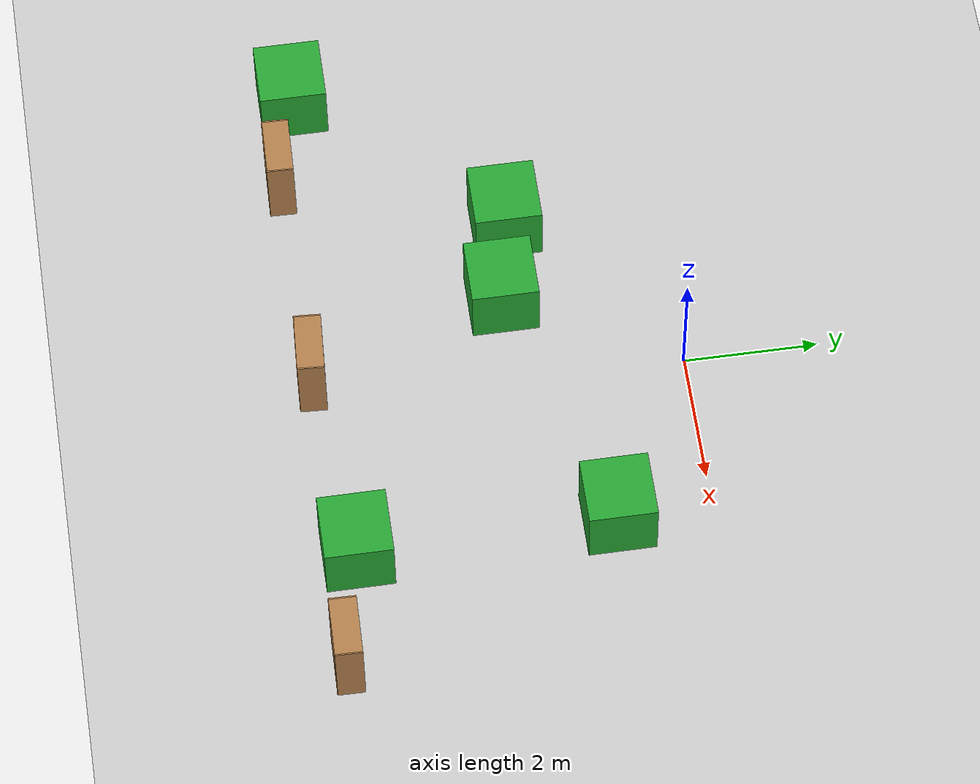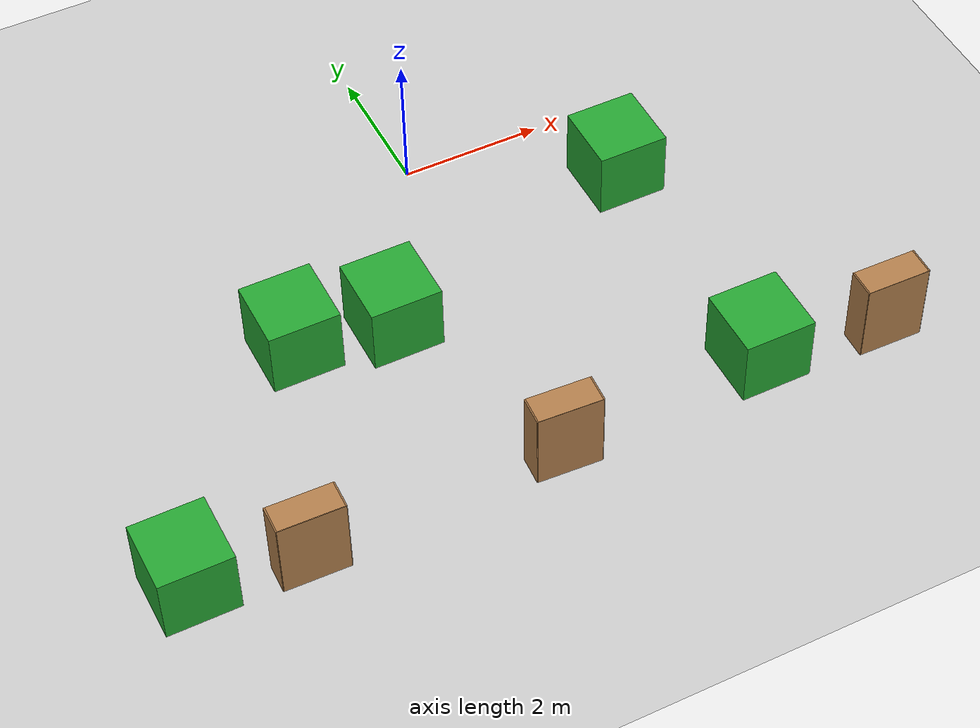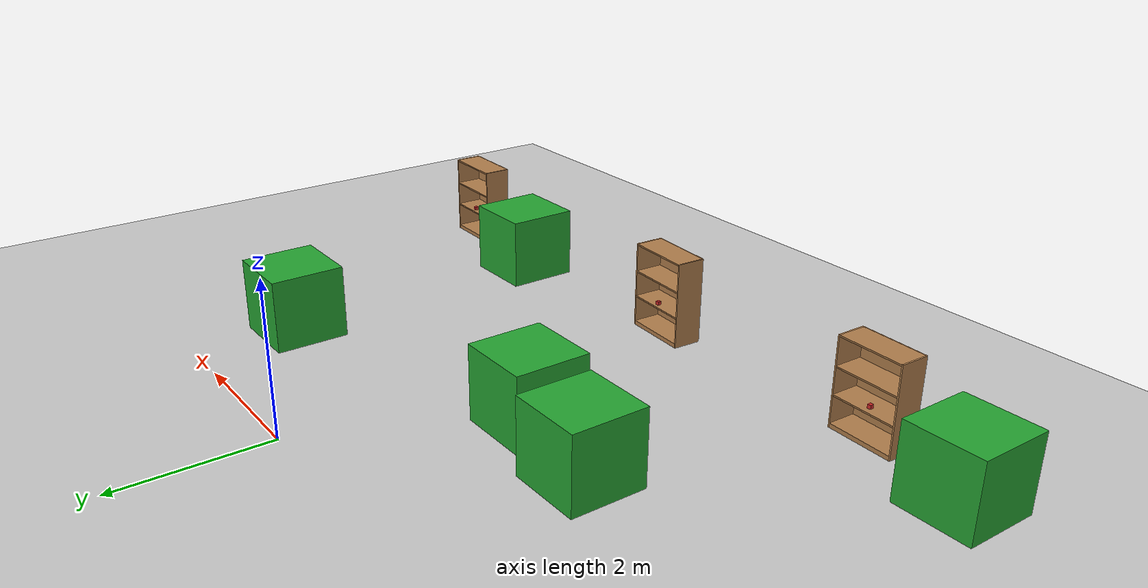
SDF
<sdf version="1.6">
 <world name="default">
  <model name="ground_plane">
   <static>1</static>
   <link name="link">
    <collision name="collision">
     <geometry><plane><normal>0 0 1</normal><size>100 100</size></plane></geometry>
     <surface><friction><ode><mu>100</mu><mu2>50</mu2></ode></friction></surface>
    </collision>
    <visual name="visual">
     <cast_shadows>0</cast_shadows>
     <geometry><plane><normal>0 0 1</normal><size>100 100</size></plane></geometry>
     <material>
      <script><uri>file://media/materials/scripts/gazebo.material</uri><name>Gazebo/Grey</name></script>
     </material>
    </visual>
   </link>
  </model>
  <model name="bookshelf_10">
   <static>1</static>
   <link name="link">
    <inertial><mass>1</mass></inertial>
    <collision name="back">
     <pose>0 0.005 0.6 0 -0 0</pose>
     <geometry><box><size>0.9 0.01 1.2</size></box></geometry>
    </collision>
    <visual name="visual1">
     <pose>0 0.005 0.6 0 -0 0</pose>
     <geometry><box><size>0.9 0.01 1.2</size></box></geometry>
     <material>
      <script><uri>file://media/materials/scripts/gazebo.material</uri><name>Gazebo/Wood</name></script>
     </material>
    </visual>
    <collision name="left_side">
     <pose>0.45 -0.195 0.6 0 -0 0</pose>
     <geometry><box><size>0.02 0.4 1.2</size></box></geometry>
    </collision>
    <visual name="visual2">
     <pose>0.45 -0.195 0.6 0 -0 0</pose>
     <geometry><box><size>0.02 0.4 1.2</size></box></geometry>
     <material>
      <script><uri>file://media/materials/scripts/gazebo.material</uri><name>Gazebo/Wood</name></script>
     </material>
    </visual>
    <collision name="right_side">
     <pose>-0.45 -0.195 0.6 0 -0 0</pose>
     <geometry><box><size>0.02 0.4 1.2</size></box></geometry>
    </collision>
    <visual name="visual3">
     <pose>-0.45 -0.195 0.6 0 -0 0</pose>
     <geometry><box><size>0.02 0.4 1.2</size></box></geometry>
     <material>
      <script><uri>file://media/materials/scripts/gazebo.material</uri><name>Gazebo/Wood</name></script>
     </material>
    </visual>
    <collision name="bottom">
     <pose>0 -0.195 0.03 0 -0 0</pose>
     <geometry><box><size>0.88 0.4 0.06</size></box></geometry>
    </collision>
    <visual name="visual4">
     <pose>0 -0.195 0.03 0 -0 0</pose>
     <geometry><box><size>0.88 0.4 0.06</size></box></geometry>
     <material>
      <script><uri>file://media/materials/scripts/gazebo.material</uri><name>Gazebo/Wood</name></script>
     </material>
    </visual>
    <collision name="top">
     <pose>0 -0.195 1.19 0 -0 0</pose>
     <geometry><box><size>0.88 0.4 0.02</size></box></geometry>
    </collision>
    <visual name="visual5">
     <pose>0 -0.195 1.19 0 -0 0</pose>
     <geometry><box><size>0.88 0.4 0.02</size></box></geometry>
     <material>
      <script><uri>file://media/materials/scripts/gazebo.material</uri><name>Gazebo/Wood</name></script>
     </material>
    </visual>
    <collision name="low_shelf">
     <pose>0 -0.195 0.43 0 -0 0</pose>
     <geometry><box><size>0.88 0.4 0.02</size></box></geometry>
    </collision>
    <visual name="visual6">
     <pose>0 -0.195 0.43 0 -0 0</pose>
     <geometry><box><size>0.88 0.4 0.02</size></box></geometry>
     <material>
      <script><uri>file://media/materials/scripts/gazebo.material</uri><name>Gazebo/Wood</name></script>
     </material>
    </visual>
    <collision name="high_shelf">
     <pose>0 -0.195 0.8 0 -0 0</pose>
     <geometry><box><size>0.88 0.4 0.02</size></box></geometry>
    </collision>
    <visual name="visual7">
     <pose>0 -0.195 0.8 0 -0 0</pose>
     <geometry><box><size>0.88 0.4 0.02</size></box></geometry>
     <material>
      <script><uri>file://media/materials/scripts/gazebo.material</uri><name>Gazebo/Wood</name></script>
     </material>
    </visual>
   </link>
   <pose>-3.90846 -5.76412 0 0 -0 3.11651</pose>
  </model>
  <model name="bookshelf_11">
   <static>1</static>
   <link name="link">
    <inertial><mass>1</mass></inertial>
    <collision name="back">
     <pose>0 0.005 0.6 0 -0 0</pose>
     <geometry><box><size>0.9 0.01 1.2</size></box></geometry>
    </collision>
    <visual name="visual1">
     <pose>0 0.005 0.6 0 -0 0</pose>
     <geometry><box><size>0.9 0.01 1.2</size></box></geometry>
     <material>
      <script><uri>file://media/materials/scripts/gazebo.material</uri><name>Gazebo/Wood</name></script>
     </material>
    </visual>
    <collision name="left_side">
     <pose>0.45 -0.195 0.6 0 -0 0</pose>
     <geometry><box><size>0.02 0.4 1.2</size></box></geometry>
    </collision>
    <visual name="visual2">
     <pose>0.45 -0.195 0.6 0 -0 0</pose>
     <geometry><box><size>0.02 0.4 1.2</size></box></geometry>
     <material>
      <script><uri>file://media/materials/scripts/gazebo.material</uri><name>Gazebo/Wood</name></script>
     </material>
    </visual>
    <collision name="right_side">
     <pose>-0.45 -0.195 0.6 0 -0 0</pose>
     <geometry><box><size>0.02 0.4 1.2</size></box></geometry>
    </collision>
    <visual name="visual3">
     <pose>-0.45 -0.195 0.6 0 -0 0</pose>
     <geometry><box><size>0.02 0.4 1.2</size></box></geometry>
     <material>
      <script><uri>file://media/materials/scripts/gazebo.material</uri><name>Gazebo/Wood</name></script>
     </material>
    </visual>
    <collision name="bottom">
     <pose>0 -0.195 0.03 0 -0 0</pose>
     <geometry><box><size>0.88 0.4 0.06</size></box></geometry>
    </collision>
    <visual name="visual4">
     <pose>0 -0.195 0.03 0 -0 0</pose>
     <geometry><box><size>0.88 0.4 0.06</size></box></geometry>
     <material>
      <script><uri>file://media/materials/scripts/gazebo.material</uri><name>Gazebo/Wood</name></script>
     </material>
    </visual>
    <collision name="top">
     <pose>0 -0.195 1.19 0 -0 0</pose>
     <geometry><box><size>0.88 0.4 0.02</size></box></geometry>
    </collision>
    <visual name="visual5">
     <pose>0 -0.195 1.19 0 -0 0</pose>
     <geometry><box><size>0.88 0.4 0.02</size></box></geometry>
     <material>
      <script><uri>file://media/materials/scripts/gazebo.material</uri><name>Gazebo/Wood</name></script>
     </material>
    </visual>
    <collision name="low_shelf">
     <pose>0 -0.195 0.43 0 -0 0</pose>
     <geometry><box><size>0.88 0.4 0.02</size></box></geometry>
    </collision>
    <visual name="visual6">
     <pose>0 -0.195 0.43 0 -0 0</pose>
     <geometry><box><size>0.88 0.4 0.02</size></box></geometry>
     <material>
      <script><uri>file://media/materials/scripts/gazebo.material</uri><name>Gazebo/Wood</name></script>
     </material>
    </visual>
    <collision name="high_shelf">
     <pose>0 -0.195 0.8 0 -0 0</pose>
     <geometry><box><size>0.88 0.4 0.02</size></box></geometry>
    </collision>
    <visual name="visual7">
     <pose>0 -0.195 0.8 0 -0 0</pose>
     <geometry><box><size>0.88 0.4 0.02</size></box></geometry>
     <material>
      <script><uri>file://media/materials/scripts/gazebo.material</uri><name>Gazebo/Wood</name></script>
     </material>
    </visual>
   </link>
   <pose>-0.409248 -5.70579 0 0 -0 3.08573</pose>
  </model>
  <model name="bookshelf_12">
   <static>1</static>
   <link name="link">
    <inertial><mass>1</mass></inertial>
    <collision name="back">
     <pose>0 0.005 0.6 0 -0 0</pose>
     <geometry><box><size>0.9 0.01 1.2</size></box></geometry>
    </collision>
    <visual name="visual1">
     <pose>0 0.005 0.6 0 -0 0</pose>
     <geometry><box><size>0.9 0.01 1.2</size></box></geometry>
     <material>
      <script><uri>file://media/materials/scripts/gazebo.material</uri><name>Gazebo/Wood</name></script>
     </material>
    </visual>
    <collision name="left_side">
     <pose>0.45 -0.195 0.6 0 -0 0</pose>
     <geometry><box><size>0.02 0.4 1.2</size></box></geometry>
    </collision>
    <visual name="visual2">
     <pose>0.45 -0.195 0.6 0 -0 0</pose>
     <geometry><box><size>0.02 0.4 1.2</size></box></geometry>
     <material>
      <script><uri>file://media/materials/scripts/gazebo.material</uri><name>Gazebo/Wood</name></script>
     </material>
    </visual>
    <collision name="right_side">
     <pose>-0.45 -0.195 0.6 0 -0 0</pose>
     <geometry><box><size>0.02 0.4 1.2</size></box></geometry>
    </collision>
    <visual name="visual3">
     <pose>-0.45 -0.195 0.6 0 -0 0</pose>
     <geometry><box><size>0.02 0.4 1.2</size></box></geometry>
     <material>
      <script><uri>file://media/materials/scripts/gazebo.material</uri><name>Gazebo/Wood</name></script>
     </material>
    </visual>
    <collision name="bottom">
     <pose>0 -0.195 0.03 0 -0 0</pose>
     <geometry><box><size>0.88 0.4 0.06</size></box></geometry>
    </collision>
    <visual name="visual4">
     <pose>0 -0.195 0.03 0 -0 0</pose>
     <geometry><box><size>0.88 0.4 0.06</size></box></geometry>
     <material>
      <script><uri>file://media/materials/scripts/gazebo.material</uri><name>Gazebo/Wood</name></script>
     </material>
    </visual>
    <collision name="top">
     <pose>0 -0.195 1.19 0 -0 0</pose>
     <geometry><box><size>0.88 0.4 0.02</size></box></geometry>
    </collision>
    <visual name="visual5">
     <pose>0 -0.195 1.19 0 -0 0</pose>
     <geometry><box><size>0.88 0.4 0.02</size></box></geometry>
     <material>
      <script><uri>file://media/materials/scripts/gazebo.material</uri><name>Gazebo/Wood</name></script>
     </material>
    </visual>
    <collision name="low_shelf">
     <pose>0 -0.195 0.43 0 -0 0</pose>
     <geometry><box><size>0.88 0.4 0.02</size></box></geometry>
    </collision>
    <visual name="visual6">
     <pose>0 -0.195 0.43 0 -0 0</pose>
     <geometry><box><size>0.88 0.4 0.02</size></box></geometry>
     <material>
      <script><uri>file://media/materials/scripts/gazebo.material</uri><name>Gazebo/Wood</name></script>
     </material>
    </visual>
    <collision name="high_shelf">
     <pose>0 -0.195 0.8 0 -0 0</pose>
     <geometry><box><size>0.88 0.4 0.02</size></box></geometry>
    </collision>
    <visual name="visual7">
     <pose>0 -0.195 0.8 0 -0 0</pose>
     <geometry><box><size>0.88 0.4 0.02</size></box></geometry>
     <material>
      <script><uri>file://media/materials/scripts/gazebo.material</uri><name>Gazebo/Wood</name></script>
     </material>
    </visual>
   </link>
   <pose>4.32997 -5.74972 0 0 -0 3.12234</pose>
  </model>
  <model name="Box_0">
   <link name="link_0">
    <pose>-2e-06 3e-06 0 0 -0 0</pose>
    <inertial>
     <mass>1</mass>
     <inertia>
      <ixx>0.166667</ixx>
      <ixy>0</ixy>
      <ixz>0</ixz>
      <iyy>0.166667</iyy>
      <iyz>0</iyz>
      <izz>0.166667</izz>
     </inertia>
    </inertial>
    <visual name="visual">
     <geometry><box><size>1 1 1</size></box></geometry>
     <material>
      <lighting>1</lighting>
      <script><uri>file://media/materials/scripts/gazebo.material</uri><name>Gazebo/Green</name></script>
      <ambient>0 1 0 1</ambient>
      <diffuse>0 1 0 1</diffuse>
      <specular>0.01 0.01 0.01 1</specular>
      <emissive>0 0 0 1</emissive>
      <shader type="vertex"><normal_map>__default__</normal_map></shader>
     </material>
    </visual>
    <collision name="collision">
     <geometry><box><size>1 1 1</size></box></geometry>
     <surface>
      <friction>
       <ode><mu>1</mu><mu2>1</mu2><fdir1>0 0 0</fdir1><slip1>0</slip1><slip2>0</slip2></ode>
       <torsional>
        <coefficient>1</coefficient>
        <patch_radius>0</patch_radius>
        <surface_radius>0</surface_radius>
        <use_patch_radius>1</use_patch_radius>
        <ode><slip>0</slip></ode>
       </torsional>
      </friction>
      <bounce><restitution_coefficient>0</restitution_coefficient><threshold>1e+06</threshold></bounce>
      <contact>
       <collide_without_contact>0</collide_without_contact>
       <collide_without_contact_bitmask>1</collide_without_contact_bitmask>
       <collide_bitmask>1</collide_bitmask>
       <ode>
        <soft_cfm>0</soft_cfm>
        <soft_erp>0.2</soft_erp>
        <kp>1e+13</kp>
        <kd>1</kd>
        <max_vel>0.01</max_vel>
        <min_depth>0</min_depth>
       </ode>
       <bullet>
        <split_impulse>1</split_impulse>
        <split_impulse_penetration_threshold>-0.01</split_impulse_penetration_threshold>
        <soft_cfm>0</soft_cfm>
        <soft_erp>0.2</soft_erp>
        <kp>1e+13</kp>
        <kd>1</kd>
       </bullet>
      </contact>
     </surface>
    </collision>
   </link>
   <static>1</static>
   <allow_auto_disable>0</allow_auto_disable>
   <pose>2.61281 -5.21469 0.502592 0 -0 0</pose>
  </model>
  <model name="Box_0_clone">
   <link name="link_0">
    <pose>-2e-06 3e-06 0 0 -0 0</pose>
    <inertial>
     <mass>1</mass>
     <inertia>
      <ixx>0.166667</ixx>
      <ixy>0</ixy>
      <ixz>0</ixz>
      <iyy>0.166667</iyy>
      <iyz>0</iyz>
      <izz>0.166667</izz>
     </inertia>
    </inertial>
    <visual name="visual">
     <geometry><box><size>1 1 1</size></box></geometry>
     <material>
      <lighting>1</lighting>
      <script><uri>file://media/materials/scripts/gazebo.material</uri><name>Gazebo/Green</name></script>
      <ambient>0 1 0 1</ambient>
      <diffuse>0 1 0 1</diffuse>
      <specular>0.01 0.01 0.01 1</specular>
      <emissive>0 0 0 1</emissive>
      <shader type="vertex"><normal_map>__default__</normal_map></shader>
     </material>
    </visual>
    <collision name="collision">
     <geometry><box><size>1 1 1</size></box></geometry>
     <surface>
      <friction>
       <ode><mu>1</mu><mu2>1</mu2><fdir1>0 0 0</fdir1><slip1>0</slip1><slip2>0</slip2></ode>
       <torsional>
        <coefficient>1</coefficient>
        <patch_radius>0</patch_radius>
        <surface_radius>0</surface_radius>
        <use_patch_radius>1</use_patch_radius>
        <ode><slip>0</slip></ode>
       </torsional>
      </friction>
      <bounce><restitution_coefficient>0</restitution_coefficient><threshold>1e+06</threshold></bounce>
      <contact>
       <collide_without_contact>0</collide_without_contact>
       <collide_without_contact_bitmask>1</collide_without_contact_bitmask>
       <collide_bitmask>1</collide_bitmask>
       <ode>
        <soft_cfm>0</soft_cfm>
        <soft_erp>0.2</soft_erp>
        <kp>1e+13</kp>
        <kd>1</kd>
        <max_vel>0.01</max_vel>
        <min_depth>0</min_depth>
       </ode>
       <bullet>
        <split_impulse>1</split_impulse>
        <split_impulse_penetration_threshold>-0.01</split_impulse_penetration_threshold>
        <soft_cfm>0</soft_cfm>
        <soft_erp>0.2</soft_erp>
        <kp>1e+13</kp>
        <kd>1</kd>
       </bullet>
      </contact>
     </surface>
    </collision>
   </link>
   <static>1</static>
   <allow_auto_disable>0</allow_auto_disable>
   <pose>2.56057 -1.39682 0.502592 0 -0 0</pose>
  </model>
  <model name="Box_0_clone_2">
   <link name="link_0">
    <pose>-2e-06 3e-06 0 0 -0 0</pose>
    <inertial>
     <mass>1</mass>
     <inertia>
      <ixx>0.166667</ixx>
      <ixy>0</ixy>
      <ixz>0</ixz>
      <iyy>0.166667</iyy>
      <iyz>0</iyz>
      <izz>0.166667</izz>
     </inertia>
    </inertial>
    <visual name="visual">
     <geometry><box><size>1 1 1</size></box></geometry>
     <material>
      <lighting>1</lighting>
      <script><uri>file://media/materials/scripts/gazebo.material</uri><name>Gazebo/Green</name></script>
      <ambient>0 1 0 1</ambient>
      <diffuse>0 1 0 1</diffuse>
      <specular>0.01 0.01 0.01 1</specular>
      <emissive>0 0 0 1</emissive>
      <shader type="vertex"><normal_map>__default__</normal_map></shader>
     </material>
    </visual>
    <collision name="collision">
     <geometry><box><size>1 1 1</size></box></geometry>
     <surface>
      <friction>
       <ode><mu>1</mu><mu2>1</mu2><fdir1>0 0 0</fdir1><slip1>0</slip1><slip2>0</slip2></ode>
       <torsional>
        <coefficient>1</coefficient>
        <patch_radius>0</patch_radius>
        <surface_radius>0</surface_radius>
        <use_patch_radius>1</use_patch_radius>
        <ode><slip>0</slip></ode>
       </torsional>
      </friction>
      <bounce><restitution_coefficient>0</restitution_coefficient><threshold>1e+06</threshold></bounce>
      <contact>
       <collide_without_contact>0</collide_without_contact>
       <collide_without_contact_bitmask>1</collide_without_contact_bitmask>
       <collide_bitmask>1</collide_bitmask>
       <ode>
        <soft_cfm>0</soft_cfm>
        <soft_erp>0.2</soft_erp>
        <kp>1e+13</kp>
        <kd>1</kd>
        <max_vel>0.01</max_vel>
        <min_depth>0</min_depth>
       </ode>
       <bullet>
        <split_impulse>1</split_impulse>
        <split_impulse_penetration_threshold>-0.01</split_impulse_penetration_threshold>
        <soft_cfm>0</soft_cfm>
        <soft_erp>0.2</soft_erp>
        <kp>1e+13</kp>
        <kd>1</kd>
       </bullet>
      </contact>
     </surface>
    </collision>
   </link>
   <static>1</static>
   <allow_auto_disable>0</allow_auto_disable>
   <pose>-1.38959 -2.54199 0.502592 0 -0 0</pose>
  </model>
  <model name="Box_0_clone_4">
   <link name="link_0">
    <pose>-2e-06 3e-06 0 0 -0 0</pose>
    <inertial>
     <mass>1</mass>
     <inertia>
      <ixx>0.166667</ixx>
      <ixy>0</ixy>
      <ixz>0</ixz>
      <iyy>0.166667</iyy>
      <iyz>0</iyz>
      <izz>0.166667</izz>
     </inertia>
    </inertial>
    <visual name="visual">
     <geometry><box><size>1 1 1</size></box></geometry>
     <material>
      <lighting>1</lighting>
      <script><uri>file://media/materials/scripts/gazebo.material</uri><name>Gazebo/Green</name></script>
      <ambient>0 1 0 1</ambient>
      <diffuse>0 1 0 1</diffuse>
      <specular>0.01 0.01 0.01 1</specular>
      <emissive>0 0 0 1</emissive>
      <shader type="vertex"><normal_map>__default__</normal_map></shader>
     </material>
    </visual>
    <collision name="collision">
     <geometry><box><size>1 1 1</size></box></geometry>
     <surface>
      <friction>
       <ode><mu>1</mu><mu2>1</mu2><fdir1>0 0 0</fdir1><slip1>0</slip1><slip2>0</slip2></ode>
       <torsional>
        <coefficient>1</coefficient>
        <patch_radius>0</patch_radius>
        <surface_radius>0</surface_radius>
        <use_patch_radius>1</use_patch_radius>
        <ode><slip>0</slip></ode>
       </torsional>
      </friction>
      <bounce><restitution_coefficient>0</restitution_coefficient><threshold>1e+06</threshold></bounce>
      <contact>
       <collide_without_contact>0</collide_without_contact>
       <collide_without_contact_bitmask>1</collide_without_contact_bitmask>
       <collide_bitmask>1</collide_bitmask>
       <ode>
        <soft_cfm>0</soft_cfm>
        <soft_erp>0.2</soft_erp>
        <kp>1e+13</kp>
        <kd>1</kd>
        <max_vel>0.01</max_vel>
        <min_depth>0</min_depth>
       </ode>
       <bullet>
        <split_impulse>1</split_impulse>
        <split_impulse_penetration_threshold>-0.01</split_impulse_penetration_threshold>
        <soft_cfm>0</soft_cfm>
        <soft_erp>0.2</soft_erp>
        <kp>1e+13</kp>
        <kd>1</kd>
       </bullet>
      </contact>
     </surface>
    </collision>
   </link>
   <static>1</static>
   <allow_auto_disable>0</allow_auto_disable>
   <pose>-5.37614 -5.22753 0.502592 0 -0 0</pose>
  </model>
  <model name="Box_0_clone_5">
   <link name="link_0">
    <pose>-2e-06 3e-06 0 0 -0 0</pose>
    <inertial>
     <mass>1</mass>
     <inertia>
      <ixx>0.166667</ixx>
      <ixy>0</ixy>
      <ixz>0</ixz>
      <iyy>0.166667</iyy>
      <iyz>0</iyz>
      <izz>0.166667</izz>
     </inertia>
    </inertial>
    <visual name="visual">
     <geometry><box><size>1 1 1</size></box></geometry>
     <material>
      <lighting>1</lighting>
      <script><uri>file://media/materials/scripts/gazebo.material</uri><name>Gazebo/Green</name></script>
      <ambient>0 1 0 1</ambient>
      <diffuse>0 1 0 1</diffuse>
      <specular>0.01 0.01 0.01 1</specular>
      <emissive>0 0 0 1</emissive>
      <shader type="vertex"><normal_map>__default__</normal_map></shader>
     </material>
    </visual>
    <collision name="collision">
     <geometry><box><size>1 1 1</size></box></geometry>
     <surface>
      <friction>
       <ode><mu>1</mu><mu2>1</mu2><fdir1>0 0 0</fdir1><slip1>0</slip1><slip2>0</slip2></ode>
       <torsional>
        <coefficient>1</coefficient>
        <patch_radius>0</patch_radius>
        <surface_radius>0</surface_radius>
        <use_patch_radius>1</use_patch_radius>
        <ode><slip>0</slip></ode>
       </torsional>
      </friction>
      <bounce><restitution_coefficient>0</restitution_coefficient><threshold>1e+06</threshold></bounce>
      <contact>
       <collide_without_contact>0</collide_without_contact>
       <collide_without_contact_bitmask>1</collide_without_contact_bitmask>
       <collide_bitmask>1</collide_bitmask>
       <ode>
        <soft_cfm>0</soft_cfm>
        <soft_erp>0.2</soft_erp>
        <kp>1e+13</kp>
        <kd>1</kd>
        <max_vel>0.01</max_vel>
        <min_depth>0</min_depth>
       </ode>
       <bullet>
        <split_impulse>1</split_impulse>
        <split_impulse_penetration_threshold>-0.01</split_impulse_penetration_threshold>
        <soft_cfm>0</soft_cfm>
        <soft_erp>0.2</soft_erp>
        <kp>1e+13</kp>
        <kd>1</kd>
       </bullet>
      </contact>
     </surface>
    </collision>
   </link>
   <static>1</static>
   <allow_auto_disable>0</allow_auto_disable>
   <pose>-2.71743 -2.3071 0.502592 0 -0 0</pose>
  </model>
  <model name="red_box_clone_1">
   <link name="link_2">
    <inertial>
     <mass>0.05</mass>
     <inertia>
      <ixx>0.166667</ixx>
      <ixy>0</ixy>
      <ixz>0</ixz>
      <iyy>0.166667</iyy>
      <iyz>0</iyz>
      <izz>0.166667</izz>
     </inertia>
    </inertial>
    <visual name="visual">
     <geometry><box><size>0.05 0.05 0.05</size></box></geometry>
     <material>
      <lighting>1</lighting>
      <script><uri>file://media/materials/scripts/gazebo.material</uri><name>Gazebo/Red</name></script>
      <ambient>1 0 0 1</ambient>
      <diffuse>0.7 0.7 0.7 1</diffuse>
      <specular>0.01 0.01 0.01 1</specular>
      <emissive>0 0 0 1</emissive>
      <shader type="vertex"><normal_map>__default__</normal_map></shader>
     </material>
    </visual>
    <collision name="collision">
     <geometry><box><size>0.05 0.05 0.05</size></box></geometry>
     <surface>
      <friction>
       <ode><mu>1</mu><mu2>1</mu2><fdir1>0 0 0</fdir1><slip1>0</slip1><slip2>0</slip2></ode>
       <torsional>
        <coefficient>1</coefficient>
        <patch_radius>0</patch_radius>
        <surface_radius>0</surface_radius>
        <use_patch_radius>1</use_patch_radius>
        <ode><slip>0</slip></ode>
       </torsional>
      </friction>
      <bounce><restitution_coefficient>0</restitution_coefficient><threshold>1e+06</threshold></bounce>
      <contact>
       <collide_without_contact>0</collide_without_contact>
       <collide_without_contact_bitmask>1</collide_without_contact_bitmask>
       <collide_bitmask>1</collide_bitmask>
       <ode>
        <soft_cfm>0</soft_cfm>
        <soft_erp>0.2</soft_erp>
        <kp>1e+13</kp>
        <kd>1</kd>
        <max_vel>0.01</max_vel>
        <min_depth>0</min_depth>
       </ode>
       <bullet>
        <split_impulse>1</split_impulse>
        <split_impulse_penetration_threshold>-0.01</split_impulse_penetration_threshold>
        <soft_cfm>0</soft_cfm>
        <soft_erp>0.2</soft_erp>
        <kp>1e+13</kp>
        <kd>1</kd>
       </bullet>
      </contact>
     </surface>
    </collision>
   </link>
   <static>1</static>
   <pose>4.34408 -5.42244 0.467723 0 -0 0</pose>
  </model>
  <model name="red_box_clone_2">
   <link name="link_2">
    <inertial>
     <mass>0.05</mass>
     <inertia>
      <ixx>0.166667</ixx>
      <ixy>0</ixy>
      <ixz>0</ixz>
      <iyy>0.166667</iyy>
      <iyz>0</iyz>
      <izz>0.166667</izz>
     </inertia>
    </inertial>
    <visual name="visual">
     <geometry><box><size>0.05 0.05 0.05</size></box></geometry>
     <material>
      <lighting>1</lighting>
      <script><uri>file://media/materials/scripts/gazebo.material</uri><name>Gazebo/Red</name></script>
      <ambient>1 0 0 1</ambient>
      <diffuse>0.7 0.7 0.7 1</diffuse>
      <specular>0.01 0.01 0.01 1</specular>
      <emissive>0 0 0 1</emissive>
      <shader type="vertex"><normal_map>__default__</normal_map></shader>
     </material>
    </visual>
    <collision name="collision">
     <geometry><box><size>0.05 0.05 0.05</size></box></geometry>
     <surface>
      <friction>
       <ode><mu>1</mu><mu2>1</mu2><fdir1>0 0 0</fdir1><slip1>0</slip1><slip2>0</slip2></ode>
       <torsional>
        <coefficient>1</coefficient>
        <patch_radius>0</patch_radius>
        <surface_radius>0</surface_radius>
        <use_patch_radius>1</use_patch_radius>
        <ode><slip>0</slip></ode>
       </torsional>
      </friction>
      <bounce><restitution_coefficient>0</restitution_coefficient><threshold>1e+06</threshold></bounce>
      <contact>
       <collide_without_contact>0</collide_without_contact>
       <collide_without_contact_bitmask>1</collide_without_contact_bitmask>
       <collide_bitmask>1</collide_bitmask>
       <ode>
        <soft_cfm>0</soft_cfm>
        <soft_erp>0.2</soft_erp>
        <kp>1e+13</kp>
        <kd>1</kd>
        <max_vel>0.01</max_vel>
        <min_depth>0</min_depth>
       </ode>
       <bullet>
        <split_impulse>1</split_impulse>
        <split_impulse_penetration_threshold>-0.01</split_impulse_penetration_threshold>
        <soft_cfm>0</soft_cfm>
        <soft_erp>0.2</soft_erp>
        <kp>1e+13</kp>
        <kd>1</kd>
       </bullet>
      </contact>
     </surface>
    </collision>
   </link>
   <static>1</static>
   <pose>-0.365921 -5.38137 0.467723 0 -0 0</pose>
  </model>
  <model name="red_box_clone_3">
   <link name="link_2">
    <inertial>
     <mass>0.05</mass>
     <inertia>
      <ixx>0.166667</ixx>
      <ixy>0</ixy>
      <ixz>0</ixz>
      <iyy>0.166667</iyy>
      <iyz>0</iyz>
      <izz>0.166667</izz>
     </inertia>
    </inertial>
    <visual name="visual">
     <geometry><box><size>0.05 0.05 0.05</size></box></geometry>
     <material>
      <lighting>1</lighting>
      <script><uri>file://media/materials/scripts/gazebo.material</uri><name>Gazebo/Red</name></script>
      <ambient>1 0 0 1</ambient>
      <diffuse>0.7 0.7 0.7 1</diffuse>
      <specular>0.01 0.01 0.01 1</specular>
      <emissive>0 0 0 1</emissive>
      <shader type="vertex"><normal_map>__default__</normal_map></shader>
     </material>
    </visual>
    <collision name="collision">
     <geometry><box><size>0.05 0.05 0.05</size></box></geometry>
     <surface>
      <friction>
       <ode><mu>1</mu><mu2>1</mu2><fdir1>0 0 0</fdir1><slip1>0</slip1><slip2>0</slip2></ode>
       <torsional>
        <coefficient>1</coefficient>
        <patch_radius>0</patch_radius>
        <surface_radius>0</surface_radius>
        <use_patch_radius>1</use_patch_radius>
        <ode><slip>0</slip></ode>
       </torsional>
      </friction>
      <bounce><restitution_coefficient>0</restitution_coefficient><threshold>1e+06</threshold></bounce>
      <contact>
       <collide_without_contact>0</collide_without_contact>
       <collide_without_contact_bitmask>1</collide_without_contact_bitmask>
       <collide_bitmask>1</collide_bitmask>
       <ode>
        <soft_cfm>0</soft_cfm>
        <soft_erp>0.2</soft_erp>
        <kp>1e+13</kp>
        <kd>1</kd>
        <max_vel>0.01</max_vel>
        <min_depth>0</min_depth>
       </ode>
       <bullet>
        <split_impulse>1</split_impulse>
        <split_impulse_penetration_threshold>-0.01</split_impulse_penetration_threshold>
        <soft_cfm>0</soft_cfm>
        <soft_erp>0.2</soft_erp>
        <kp>1e+13</kp>
        <kd>1</kd>
       </bullet>
      </contact>
     </surface>
    </collision>
   </link>
   <static>1</static>
   <pose>-3.92421 -5.4726 0.467723 0 -0 0</pose>
  </model>
 </world>
</sdf>
